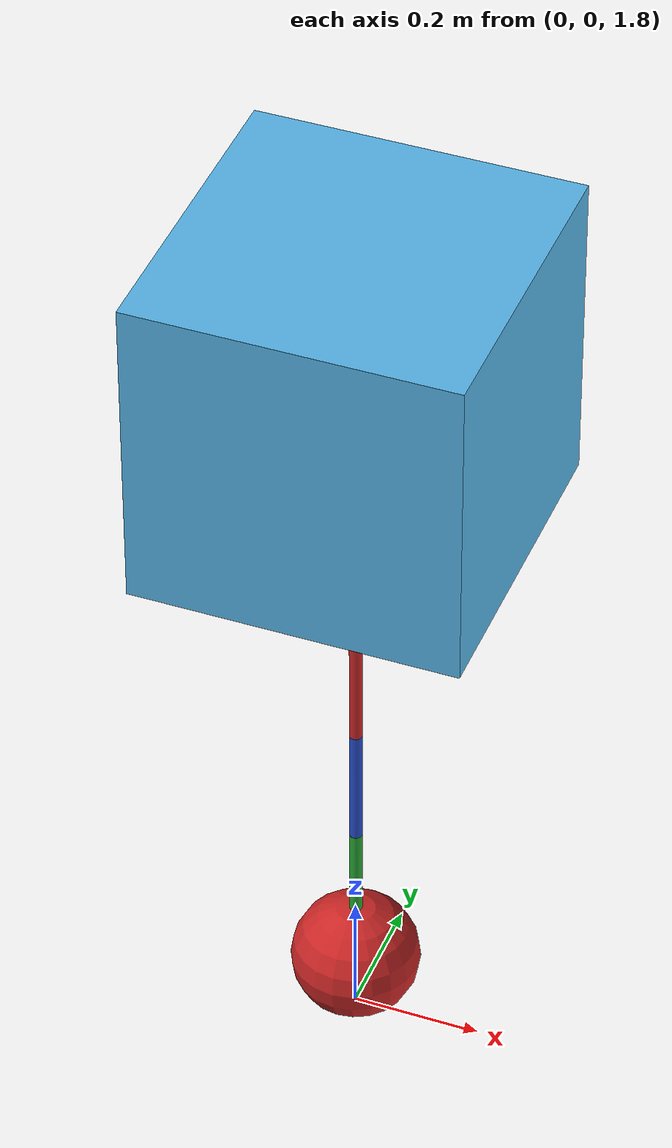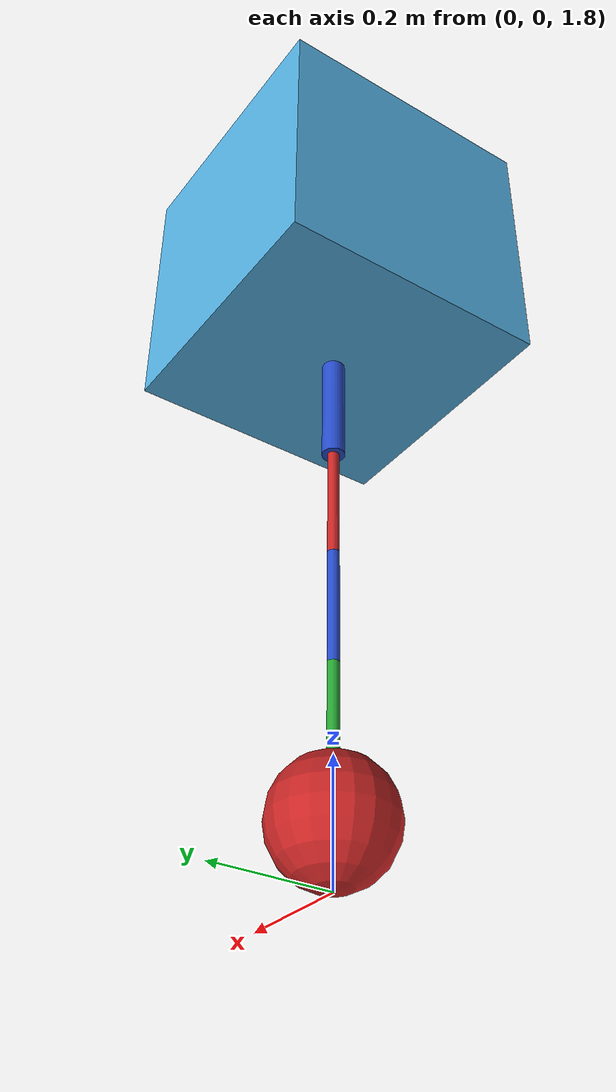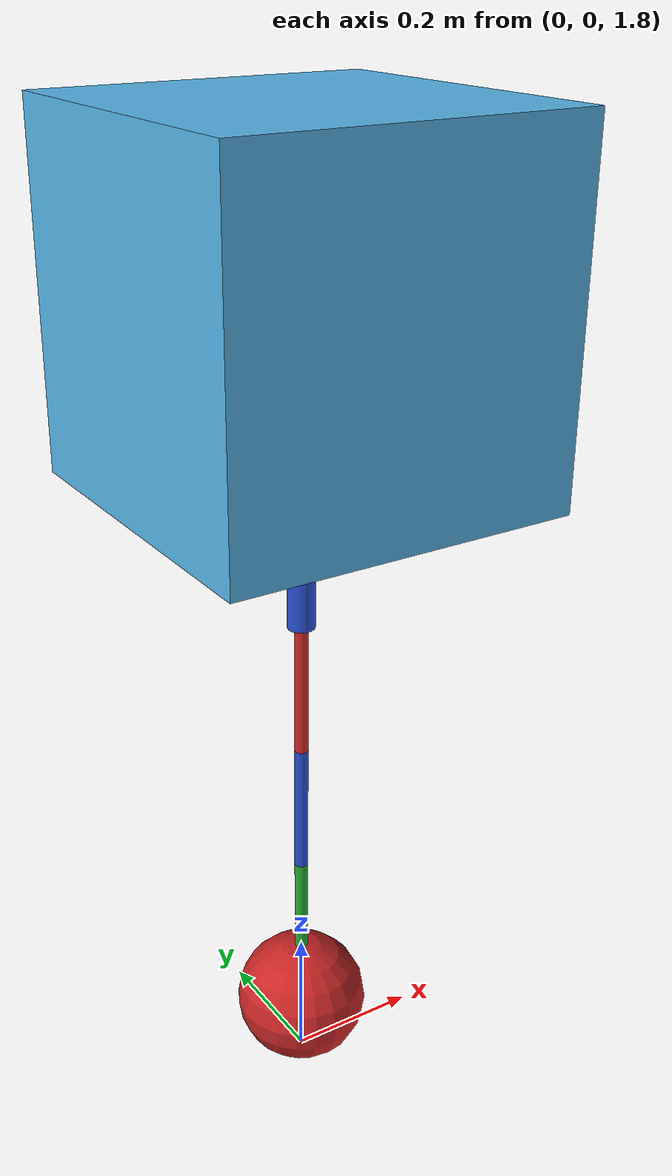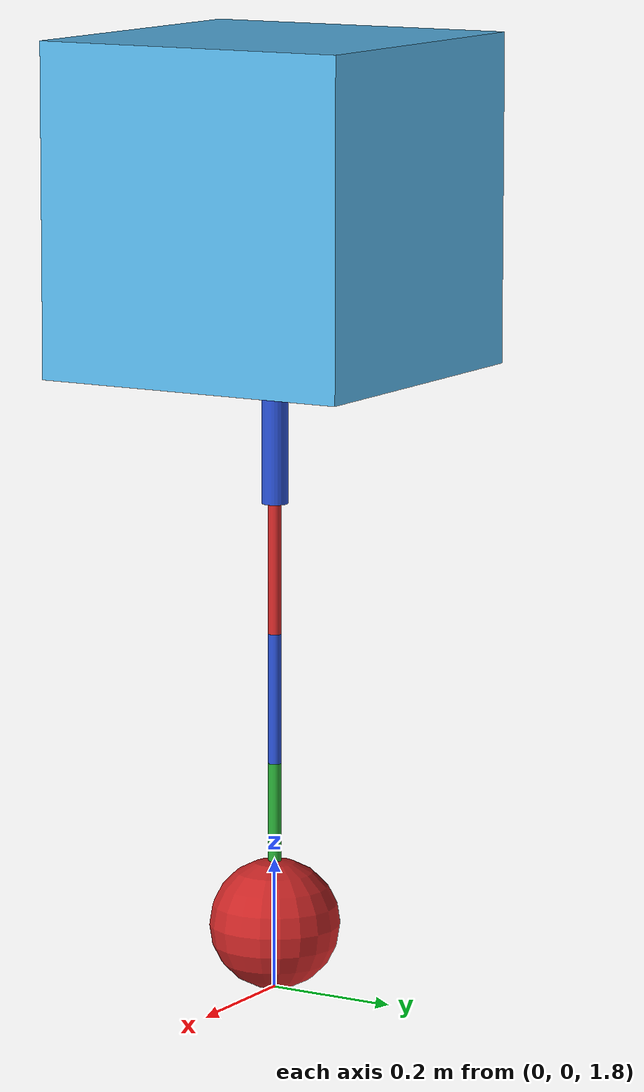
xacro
<?xml version="1.0"?>
<robot xmlns:xacro="http://www.ros.org/wiki/xacro" name="myrobot">

	<xacro:property name="width" value="0.02"/>
	<xacro:property name="width_1" value="0.01"/>
	<xacro:property name="body_len" value="0.2"/>
	<xacro:property name="box_param" value="0.5"/>
	<xacro:property name="spawn_point" value="3"/>
	<xacro:property name="radius" value="0.1"/>

		<!-- REFERENCE FRAME/CHILD/PARENT http://wiki.ros.org/urdf/XML/joint/-->
		<!-- SDF documentation: http://sdformat.org/ -->
		<!-- xacro(XML macro): http://wiki.ros.org/xacro -->
		<!-- URDF in GAZEBO: http://gazebosim.org/tutorials/?tut=ros_urdf#%3Cgazebo%3Eelementforthetag -->
		<!-- URDF tutorials:http://wiki.ros.org/urdf/Tutorials -->
		<!-- Gravity disable: http://answers.gazebosim.org/question/13416/how-to-disable-gravity-only-for-a-specific-model-in-gazebo/ -->
		<!-- WORLD_TO_BASE fixed joint - TF between base and world -->
		<!-- NEXT_STEPS NEXT_STEPS NEXT_STEPS -->
		<!-- CREATE BALL LINK - series of revolute joints or infitensimaly small links connected with simple revolute/continuous joints-->
		<!-- PHYSICS THE ROPE, INERTIA ELEMENTS FOR ROPE AND LOAD SHOULD BE CALCULATED -->
		<!-- XACRO PROPERTIES, LAUNCH FILE AUTOMATICALLY CONVERTS XACRO TO URDF -->

		<link name="world"/>

		<link name="base_link">
			<visual>
				<geometry>
					<box size="${box_param} ${box_param} ${box_param}"/>
				</geometry>
			</visual>

			<collision>
				<geometry>
					<box size="${box_param} ${box_param} ${box_param}"/>
				</geometry>
			</collision>

			<inertial>
			<mass value="0.01"/>
			<inertia
				ixx="0.01" ixy="0.0" ixz="0.0"
        		iyy="0.01" iyz="0.0"
        		izz="0.01"/>
			</inertial>
		</link>

		<link name="rope_1">
			<visual>
				<geometry>
					<cylinder radius="${width}" length="${body_len}"/>
				</geometry>
				<origin xyz="0 0 ${-body_len/2}" rpy="0 0 0"/>-
			</visual>
			<collision>
				<geometry>
					<cylinder radius="${width}" length="${body_len}"/>
				</geometry>
				<origin xyz="0  0 ${-body_len/2}" rpy="0 0 0"/>
			</collision>

			<inertial>
			<mass value="0.01"/>
			<inertia
				ixx="0.01" ixy="0.0" ixz="0.0"
        		iyy="0.01" iyz="0.0"
        		izz="0.01"/>
			</inertial>
		</link>

		<link name="rope_2">
			<visual>
				<geometry>
					<cylinder radius="${width_1}" length="${body_len}"/>
				</geometry>
				<origin xyz="0 0 ${-body_len/2}" rpy="0 0 0"/>
				<material name="red"/>
			</visual>
			<collision>
				<geometry>
					<cylinder radius="${width_1}" length="${body_len}"/>
				</geometry>
				<origin xyz="0 0 ${-body_len/2}" rpy="0 0 0"/>-->
			</collision>

			<inertial>
				<mass value="0.01"/>
				<inertia
					ixx="0.01" ixy="0.0" ixz="0.0"
        			iyy="0.01" iyz="0.0"
        			izz="0.01"/>
			</inertial>
		</link>

		<link name="rope_3">
			<visual>
				<geometry>
					<cylinder radius="${width_1}" length="${body_len}"/>
				</geometry>
				<origin xyz="0 0 ${-body_len/2}" rpy="0 0 0"/>
			</visual>
			<collision>
				<geometry>
					<cylinder radius="${width_1}" length="${body_len}"/>
				</geometry>
				<origin xyz="0 0 ${-body_len/2}" rpy="0 0 0"/>
			</collision>

			<inertial>
				<mass value="0.01"/>

				<inertia
					ixx="0.01" ixy="0.0" ixz="0.0"
        			iyy="0.01" iyz="0.0"
        			izz="0.01"/>
			</inertial>
		</link>

		<link name="rope_4">
			<visual>
				<geometry>
					<cylinder radius="${width_1}" length="${body_len}"/>
				</geometry>
				<origin xyz="0 0 ${-body_len/2}" rpy="0 0 0"/>
			</visual>
			<collision>
				<geometry>
					<cylinder radius="${width_1}" length="${body_len}"/>
				</geometry>
				<origin xyz="0 0 ${-body_len/2}" rpy="0 0 0"/>
			</collision>

			<inertial>
				<mass value="0.01"/>

				<inertia
					ixx="0.01" ixy="0.0" ixz="0.0"
        			iyy="0.01" iyz="0.0"
        			izz="0.01"/>
			</inertial>
		</link>

		<link name="load">
			<visual>
				<geometry>
					<sphere radius="${radius}"/>
				</geometry>
				<origin xyz="0 0 ${-radius/2}" rpy="0 0 0"/>
			</visual>

			<collision>
				<geometry>
					<sphere radius="${radius}"/>
				</geometry>
				<origin xyz="0 0 ${-radius/2}" rpy="0 0 0"/>
			</collision>

			<inertial>
				<mass value="0.1"/>
				<inertia
					ixx="0.1" ixy="0.0" ixz="0.0"
					iyy="0.1" iyz="0.0"
					izz="0.1"/>
			</inertial>
		</link>

		<joint name="world_to_base_link" type="fixed">
				<parent link="world"/>
				<child link="base_link"/>
				<origin xyz="0 0 ${spawn_point}"/>

		</joint>

		<joint name="base_linktorope1" type="revolute">
    		<parent link="base_link"/>
    		<child link="rope_1"/>
    		<origin xyz="0 0 ${-box_param/2}"/>
			<axis xyz="0 1 0"/>
			<limit lower="-1.5707" upper="1.5707" effort="0.01" velocity="0.01"/>
		</joint>

		<joint name="rope1_to_rope2" type="revolute">
			<parent link="rope_1"/>
			<child link="rope_2"/>
			<origin xyz="0 0 ${-body_len}"/>
			<axis xyz="0 1 0" />
			<limit lower="-1.5707" upper="1.5707" effort="0.01" velocity="0.01"/>
		</joint>

		<joint name="rope2_to_rope3" type="revolute">
			<parent link="rope_2"/>
			<child link="rope_3"/>
			<origin xyz="0 0 ${-body_len}"/>
			<axis xyz="1 0 0"/>
			<limit lower="-1.5707" upper="1.5707" effort="0.01" velocity="0.01"/>
		</joint>

		<joint name="rope3_to_rope4" type="revolute">
			<parent link="rope_3"/>
			<child link="rope_4"/>
			<origin xyz="0 0 ${-body_len}"/>
			<axis xyz="0 1 0"/>
			<limit lower="-1.5707" upper="1.5707" effort="0.01" velocity="0.01"/>
		</joint>

		<joint name="rope4_to_load" type="revolute">
			<parent link="rope_4"/>
			<child link="load"/>
			<origin xyz="0 0 ${-body_len}"/>
			<axis xyz="0 1 0"/>
			<limit lower="-1.5707" upper="1.5707" effort="0.01" velocity="0.01"/>
		</joint>

		<gazebo reference="rope_1">
			<material>Gazebo/Blue</material>
		</gazebo>
		<gazebo reference="rope_2">
			<material>Gazebo/Green</material>
		</gazebo>
		<gazebo reference="rope_3">
			<material>Gazebo/Blue</material>
		</gazebo>
		<gazebo reference="rope_4">
			<material>Gazebo/Green</material>
		</gazebo>
		<gazebo reference="load">
			<material>Gazebo/Red</material>
		</gazebo>
		<gazebo reference="base_link">
			<static>1</static>
			<gravity>0</gravity>
		</gazebo>

</robot>
